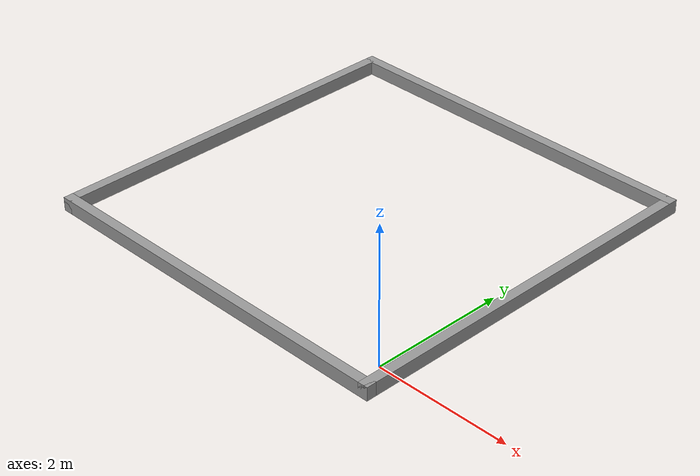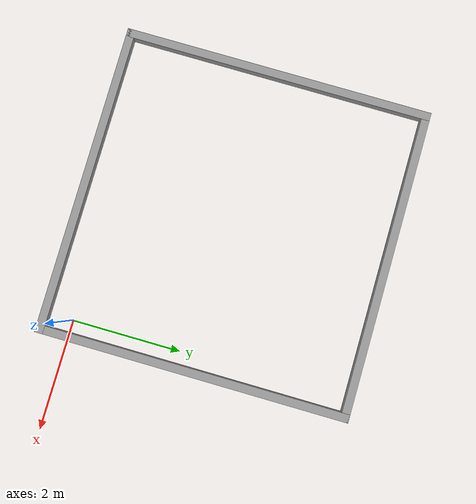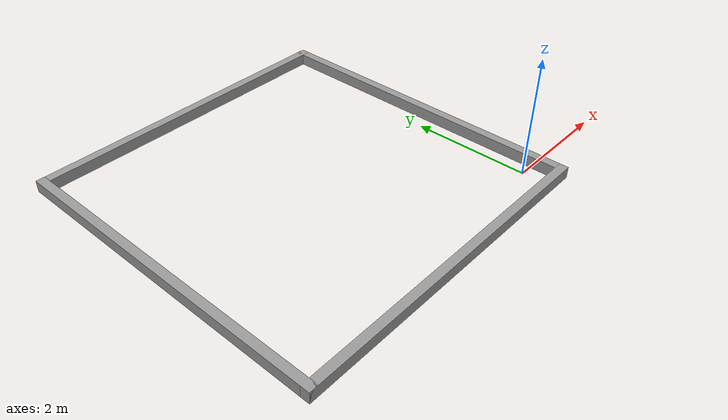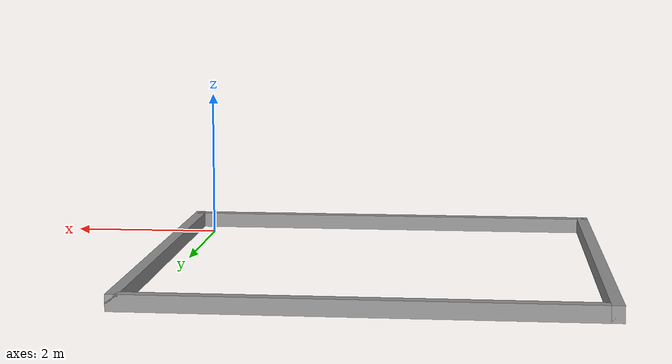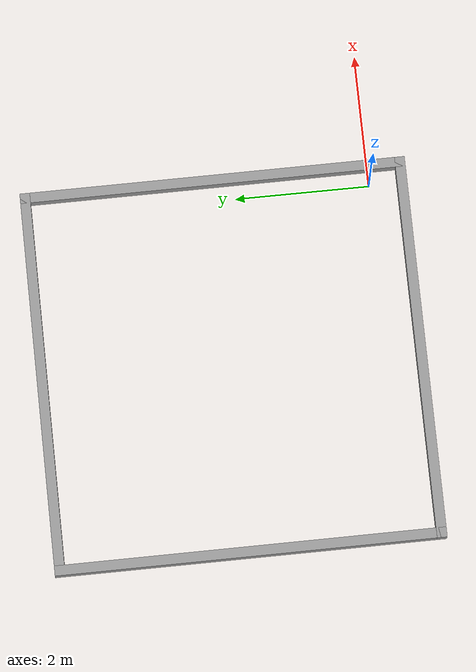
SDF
<?xml version='1.0'?>
<sdf version='1.7'>
  <model name='square_wall_5x5'>
    <pose>-2.51 2.31 0 0 -0 0</pose>
    <link name='Wall_0'>
      <collision name='Wall_0_Collision'>
        <geometry>
          <box>
            <size>5.75 0.15 0.2</size>
          </box>
        </geometry>
        <pose>0 0 0.1 0 -0 0</pose>
      </collision>
      <visual name='Wall_0_Visual'>
        <pose>0 0 0.1 0 -0 0</pose>
        <geometry>
          <box>
            <size>5.75 0.15 0.2</size>
          </box>
        </geometry>
        <material>
          <script>
            <uri>file://media/materials/scripts/gazebo.material</uri>
            <name>Gazebo/Grey</name>
          </script>
          <ambient>1 1 1 1</ambient>
        </material>
        <meta>
          <layer>0</layer>
        </meta>
      </visual>
      <pose>-0 -2.8 0 0 -0 0</pose>
    </link>
    <link name='Wall_2'>
      <collision name='Wall_2_Collision'>
        <geometry>
          <box>
            <size>5.75 0.15 0.2</size>
          </box>
        </geometry>
        <pose>0 0 0.1 0 -0 0</pose>
      </collision>
      <visual name='Wall_2_Visual'>
        <pose>0 0 0.1 0 -0 0</pose>
        <geometry>
          <box>
            <size>5.75 0.15 0.2</size>
          </box>
        </geometry>
        <material>
          <script>
            <uri>file://media/materials/scripts/gazebo.material</uri>
            <name>Gazebo/Grey</name>
          </script>
          <ambient>1 1 1 1</ambient>
        </material>
        <meta>
          <layer>0</layer>
        </meta>
      </visual>
      <pose>-2.8 -0 0 0 -0 1.5708</pose>
    </link>
    <link name='Wall_4'>
      <collision name='Wall_4_Collision'>
        <geometry>
          <box>
            <size>5.75 0.15 0.2</size>
          </box>
        </geometry>
        <pose>0 0 0.1 0 -0 0</pose>
      </collision>
      <visual name='Wall_4_Visual'>
        <pose>0 0 0.1 0 -0 0</pose>
        <geometry>
          <box>
            <size>5.75 0.15 0.2</size>
          </box>
        </geometry>
        <material>
          <script>
            <uri>file://media/materials/scripts/gazebo.material</uri>
            <name>Gazebo/Grey</name>
          </script>
          <ambient>1 1 1 1</ambient>
        </material>
        <meta>
          <layer>0</layer>
        </meta>
      </visual>
      <pose>-0 2.8 0 0 -0 0</pose>
    </link>
    <link name='Wall_5'>
      <collision name='Wall_5_Collision'>
        <geometry>
          <box>
            <size>5.75 0.15 0.2</size>
          </box>
        </geometry>
        <pose>0 0 0.1 0 -0 0</pose>
      </collision>
      <visual name='Wall_5_Visual'>
        <pose>0 0 0.1 0 -0 0</pose>
        <geometry>
          <box>
            <size>5.75 0.15 0.2</size>
          </box>
        </geometry>
        <material>
          <script>
            <uri>file://media/materials/scripts/gazebo.material</uri>
            <name>Gazebo/Grey</name>
          </script>
          <ambient>1 1 1 1</ambient>
        </material>
        <meta>
          <layer>0</layer>
        </meta>
      </visual>
      <pose>2.8 -0 0 0 -0 -1.5708</pose>
    </link>
    <static>1</static>
  </model>
</sdf>
